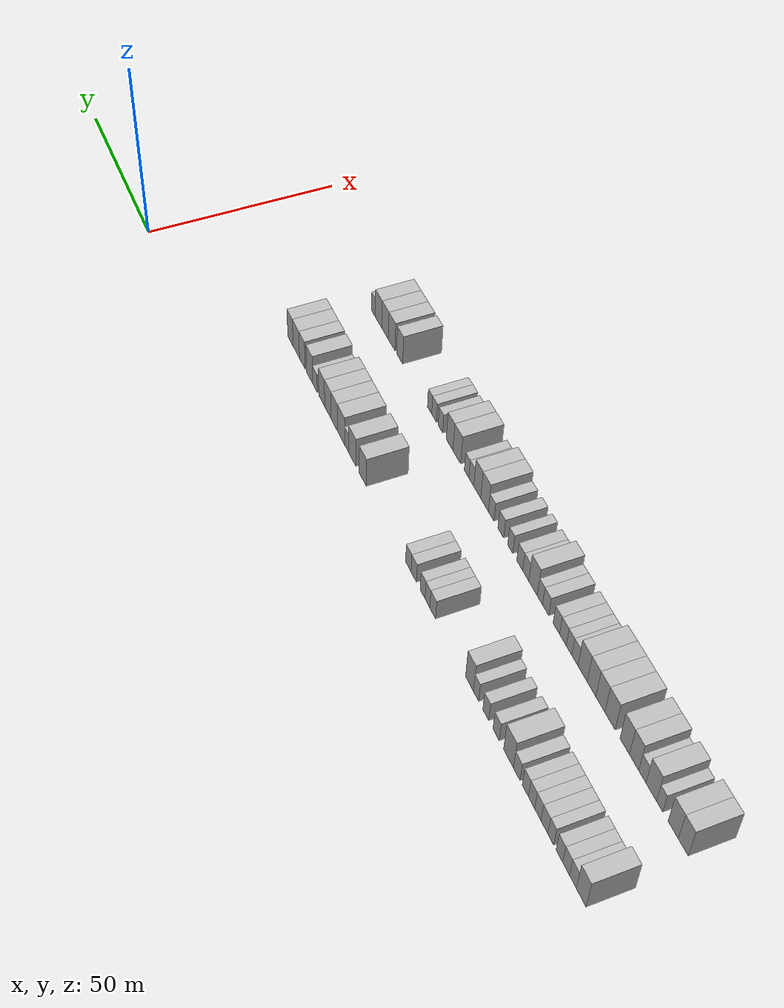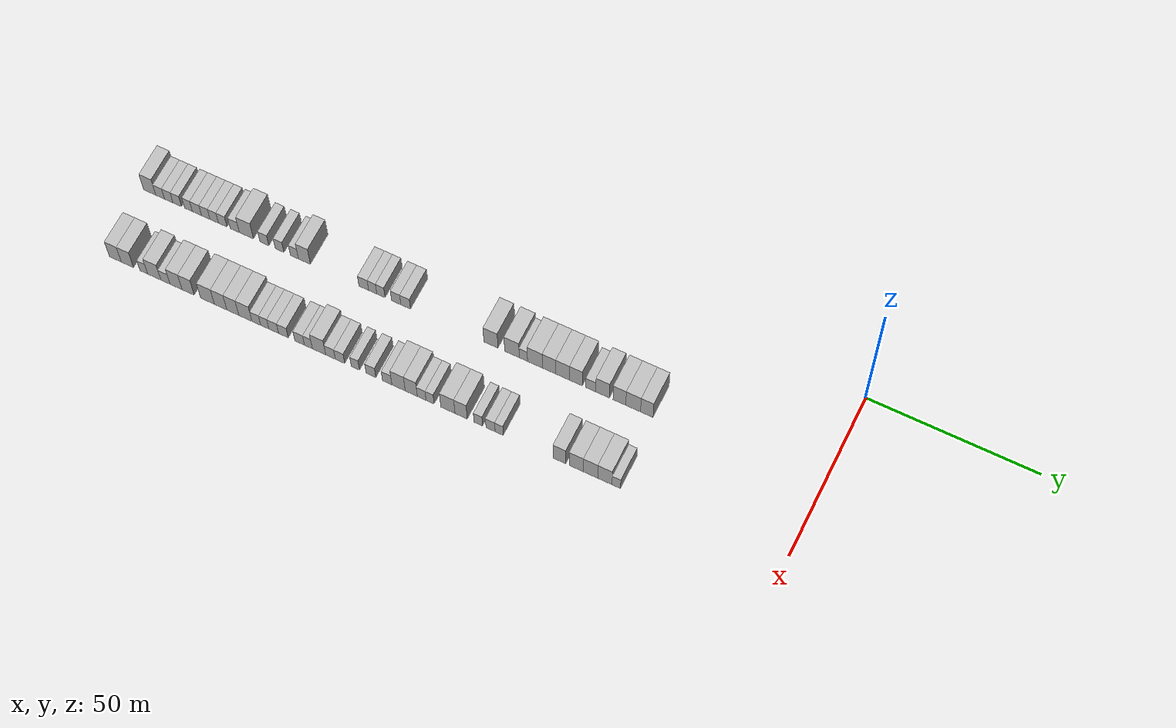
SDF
<sdf version="1.6">
 <world name="default">
  <model name="building_1">
   <static>1</static>
   <pose>25.0000 -202.0835 0 0.000000 0.000000 0.000000</pose>
   <link name="link">
    <pose>0 0 4.50 0 0 0</pose>
    <collision name="collision"><geometry><box><size>10.0000 3.8331 9.0000</size></box></geometry></collision>
    <visual name="visual">
     <cast_shadows>0</cast_shadows>
     <geometry><box><size>10.0000 3.8331 9.0000</size></box></geometry>
     <material>
      <script>
       <uri>model://HANNAS_wall/materials/scripts</uri>
       <uri>model://HANNAS_wall/materials/textures</uri>
       <name>vrc/HANNAS_wall</name>
      </script>
     </material>
    </visual>
   </link>
  </model>
  <model name="building_2">
   <static>1</static>
   <pose>25.0000 -198.8063 0 0.000000 0.000000 0.000000</pose>
   <link name="link">
    <pose>0 0 3.00 0 0 0</pose>
    <collision name="collision"><geometry><box><size>10.0000 2.7212 6.0000</size></box></geometry></collision>
    <visual name="visual">
     <cast_shadows>0</cast_shadows>
     <geometry><box><size>10.0000 2.7212 6.0000</size></box></geometry>
     <material>
      <script>
       <uri>model://HANNAS_wall/materials/scripts</uri>
       <uri>model://HANNAS_wall/materials/textures</uri>
       <name>vrc/HANNAS_wall</name>
      </script>
     </material>
    </visual>
   </link>
  </model>
  <model name="building_3">
   <static>1</static>
   <pose>25.0000 -196.0775 0 0.000000 0.000000 0.000000</pose>
   <link name="link">
    <pose>0 0 3.00 0 0 0</pose>
    <collision name="collision"><geometry><box><size>10.0000 2.7364 6.0000</size></box></geometry></collision>
    <visual name="visual">
     <cast_shadows>0</cast_shadows>
     <geometry><box><size>10.0000 2.7364 6.0000</size></box></geometry>
     <material>
      <script>
       <uri>model://HANNAS_wall/materials/scripts</uri>
       <uri>model://HANNAS_wall/materials/textures</uri>
       <name>vrc/HANNAS_wall</name>
      </script>
     </material>
    </visual>
   </link>
  </model>
  <model name="building_4">
   <static>1</static>
   <pose>25.0000 -193.3629 0 0.000000 0.000000 0.000000</pose>
   <link name="link">
    <pose>0 0 3.00 0 0 0</pose>
    <collision name="collision"><geometry><box><size>10.0000 2.6928 6.0000</size></box></geometry></collision>
    <visual name="visual">
     <cast_shadows>0</cast_shadows>
     <geometry><box><size>10.0000 2.6928 6.0000</size></box></geometry>
     <material>
      <script>
       <uri>model://HANNAS_wall/materials/scripts</uri>
       <uri>model://HANNAS_wall/materials/textures</uri>
       <name>vrc/HANNAS_wall</name>
      </script>
     </material>
    </visual>
   </link>
  </model>
  <model name="building_5">
   <static>1</static>
   <pose>25.0000 -189.8049 0 0.000000 0.000000 0.000000</pose>
   <link name="link">
    <pose>0 0 3.00 0 0 0</pose>
    <collision name="collision"><geometry><box><size>10.0000 2.4231 6.0000</size></box></geometry></collision>
    <visual name="visual">
     <cast_shadows>0</cast_shadows>
     <geometry><box><size>10.0000 2.4231 6.0000</size></box></geometry>
     <material>
      <script>
       <uri>model://HANNAS_wall/materials/scripts</uri>
       <uri>model://HANNAS_wall/materials/textures</uri>
       <name>vrc/HANNAS_wall</name>
      </script>
     </material>
    </visual>
   </link>
  </model>
  <model name="building_6">
   <static>1</static>
   <pose>25.0000 -187.1418 0 0.000000 0.000000 0.000000</pose>
   <link name="link">
    <pose>0 0 3.00 0 0 0</pose>
    <collision name="collision"><geometry><box><size>10.0000 2.9031 6.0000</size></box></geometry></collision>
    <visual name="visual">
     <cast_shadows>0</cast_shadows>
     <geometry><box><size>10.0000 2.9031 6.0000</size></box></geometry>
     <material>
      <script>
       <uri>model://HANNAS_wall/materials/scripts</uri>
       <uri>model://HANNAS_wall/materials/textures</uri>
       <name>vrc/HANNAS_wall</name>
      </script>
     </material>
    </visual>
   </link>
  </model>
  <model name="building_7">
   <static>1</static>
   <pose>25.0000 -184.3537 0 0.000000 0.000000 0.000000</pose>
   <link name="link">
    <pose>0 0 3.00 0 0 0</pose>
    <collision name="collision"><geometry><box><size>10.0000 2.6732 6.0000</size></box></geometry></collision>
    <visual name="visual">
     <cast_shadows>0</cast_shadows>
     <geometry><box><size>10.0000 2.6732 6.0000</size></box></geometry>
     <material>
      <script>
       <uri>model://HANNAS_wall/materials/scripts</uri>
       <uri>model://HANNAS_wall/materials/textures</uri>
       <name>vrc/HANNAS_wall</name>
      </script>
     </material>
    </visual>
   </link>
  </model>
  <model name="building_8">
   <static>1</static>
   <pose>25.0000 -181.7031 0 0.000000 0.000000 0.000000</pose>
   <link name="link">
    <pose>0 0 3.00 0 0 0</pose>
    <collision name="collision"><geometry><box><size>10.0000 2.6281 6.0000</size></box></geometry></collision>
    <visual name="visual">
     <cast_shadows>0</cast_shadows>
     <geometry><box><size>10.0000 2.6281 6.0000</size></box></geometry>
     <material>
      <script>
       <uri>model://HANNAS_wall/materials/scripts</uri>
       <uri>model://HANNAS_wall/materials/textures</uri>
       <name>vrc/HANNAS_wall</name>
      </script>
     </material>
    </visual>
   </link>
  </model>
  <model name="building_9">
   <static>1</static>
   <pose>25.0000 -179.0499 0 0.000000 0.000000 0.000000</pose>
   <link name="link">
    <pose>0 0 3.00 0 0 0</pose>
    <collision name="collision"><geometry><box><size>10.0000 2.6783 6.0000</size></box></geometry></collision>
    <visual name="visual">
     <cast_shadows>0</cast_shadows>
     <geometry><box><size>10.0000 2.6783 6.0000</size></box></geometry>
     <material>
      <script>
       <uri>model://HANNAS_wall/materials/scripts</uri>
       <uri>model://HANNAS_wall/materials/textures</uri>
       <name>vrc/HANNAS_wall</name>
      </script>
     </material>
    </visual>
   </link>
  </model>
  <model name="building_10">
   <static>1</static>
   <pose>25.0000 -175.2696 0 0.000000 0.000000 0.000000</pose>
   <link name="link">
    <pose>0 0 3.00 0 0 0</pose>
    <collision name="collision"><geometry><box><size>10.0000 2.8823 6.0000</size></box></geometry></collision>
    <visual name="visual">
     <cast_shadows>0</cast_shadows>
     <geometry><box><size>10.0000 2.8823 6.0000</size></box></geometry>
     <material>
      <script>
       <uri>model://HANNAS_wall/materials/scripts</uri>
       <uri>model://HANNAS_wall/materials/textures</uri>
       <name>vrc/HANNAS_wall</name>
      </script>
     </material>
    </visual>
   </link>
  </model>
  <model name="building_11">
   <static>1</static>
   <pose>25.0000 -171.6213 0 0.000000 0.000000 0.000000</pose>
   <link name="link">
    <pose>0 0 4.50 0 0 0</pose>
    <collision name="collision"><geometry><box><size>10.0000 4.4142 9.0000</size></box></geometry></collision>
    <visual name="visual">
     <cast_shadows>0</cast_shadows>
     <geometry><box><size>10.0000 4.4142 9.0000</size></box></geometry>
     <material>
      <script>
       <uri>model://HANNAS_wall/materials/scripts</uri>
       <uri>model://HANNAS_wall/materials/textures</uri>
       <name>vrc/HANNAS_wall</name>
      </script>
     </material>
    </visual>
   </link>
  </model>
  <model name="building_12">
   <static>1</static>
   <pose>25.0000 -166.0089 0 0.000000 0.000000 0.000000</pose>
   <link name="link">
    <pose>0 0 3.00 0 0 0</pose>
    <collision name="collision"><geometry><box><size>10.0000 2.8105 6.0000</size></box></geometry></collision>
    <visual name="visual">
     <cast_shadows>0</cast_shadows>
     <geometry><box><size>10.0000 2.8105 6.0000</size></box></geometry>
     <material>
      <script>
       <uri>model://HANNAS_wall/materials/scripts</uri>
       <uri>model://HANNAS_wall/materials/textures</uri>
       <name>vrc/HANNAS_wall</name>
      </script>
     </material>
    </visual>
   </link>
  </model>
  <model name="building_13">
   <static>1</static>
   <pose>25.0000 -161.2467 0 0.000000 0.000000 0.000000</pose>
   <link name="link">
    <pose>0 0 3.00 0 0 0</pose>
    <collision name="collision"><geometry><box><size>10.0000 2.7138 6.0000</size></box></geometry></collision>
    <visual name="visual">
     <cast_shadows>0</cast_shadows>
     <geometry><box><size>10.0000 2.7138 6.0000</size></box></geometry>
     <material>
      <script>
       <uri>model://HANNAS_wall/materials/scripts</uri>
       <uri>model://HANNAS_wall/materials/textures</uri>
       <name>vrc/HANNAS_wall</name>
      </script>
     </material>
    </visual>
   </link>
  </model>
  <model name="building_14">
   <static>1</static>
   <pose>25.0000 -156.6414 0 0.000000 0.000000 0.000000</pose>
   <link name="link">
    <pose>0 0 3.00 0 0 0</pose>
    <collision name="collision"><geometry><box><size>10.0000 2.4969 6.0000</size></box></geometry></collision>
    <visual name="visual">
     <cast_shadows>0</cast_shadows>
     <geometry><box><size>10.0000 2.4969 6.0000</size></box></geometry>
     <material>
      <script>
       <uri>model://HANNAS_wall/materials/scripts</uri>
       <uri>model://HANNAS_wall/materials/textures</uri>
       <name>vrc/HANNAS_wall</name>
      </script>
     </material>
    </visual>
   </link>
  </model>
  <model name="building_15">
   <static>1</static>
   <pose>25.0000 -153.5382 0 0.000000 0.000000 0.000000</pose>
   <link name="link">
    <pose>0 0 4.50 0 0 0</pose>
    <collision name="collision"><geometry><box><size>10.0000 3.7095 9.0000</size></box></geometry></collision>
    <visual name="visual">
     <cast_shadows>0</cast_shadows>
     <geometry><box><size>10.0000 3.7095 9.0000</size></box></geometry>
     <material>
      <script>
       <uri>model://HANNAS_wall/materials/scripts</uri>
       <uri>model://HANNAS_wall/materials/textures</uri>
       <name>vrc/HANNAS_wall</name>
      </script>
     </material>
    </visual>
   </link>
  </model>
  <model name="building_16">
   <static>1</static>
   <pose>25.0000 -135.2273 0 0.000000 0.000000 0.000000</pose>
   <link name="link">
    <pose>0 0 3.00 0 0 0</pose>
    <collision name="collision"><geometry><box><size>10.0000 2.9708 6.0000</size></box></geometry></collision>
    <visual name="visual">
     <cast_shadows>0</cast_shadows>
     <geometry><box><size>10.0000 2.9708 6.0000</size></box></geometry>
     <material>
      <script>
       <uri>model://HANNAS_wall/materials/scripts</uri>
       <uri>model://HANNAS_wall/materials/textures</uri>
       <name>vrc/HANNAS_wall</name>
      </script>
     </material>
    </visual>
   </link>
  </model>
  <model name="building_17">
   <static>1</static>
   <pose>25.0000 -132.5023 0 0.000000 0.000000 0.000000</pose>
   <link name="link">
    <pose>0 0 3.00 0 0 0</pose>
    <collision name="collision"><geometry><box><size>10.0000 2.4791 6.0000</size></box></geometry></collision>
    <visual name="visual">
     <cast_shadows>0</cast_shadows>
     <geometry><box><size>10.0000 2.4791 6.0000</size></box></geometry>
     <material>
      <script>
       <uri>model://HANNAS_wall/materials/scripts</uri>
       <uri>model://HANNAS_wall/materials/textures</uri>
       <name>vrc/HANNAS_wall</name>
      </script>
     </material>
    </visual>
   </link>
  </model>
  <model name="building_18">
   <static>1</static>
   <pose>25.0000 -129.9862 0 0.000000 0.000000 0.000000</pose>
   <link name="link">
    <pose>0 0 3.00 0 0 0</pose>
    <collision name="collision"><geometry><box><size>10.0000 2.5531 6.0000</size></box></geometry></collision>
    <visual name="visual">
     <cast_shadows>0</cast_shadows>
     <geometry><box><size>10.0000 2.5531 6.0000</size></box></geometry>
     <material>
      <script>
       <uri>model://HANNAS_wall/materials/scripts</uri>
       <uri>model://HANNAS_wall/materials/textures</uri>
       <name>vrc/HANNAS_wall</name>
      </script>
     </material>
    </visual>
   </link>
  </model>
  <model name="building_19">
   <static>1</static>
   <pose>25.0000 -125.3027 0 0.000000 0.000000 0.000000</pose>
   <link name="link">
    <pose>0 0 3.00 0 0 0</pose>
    <collision name="collision"><geometry><box><size>10.0000 2.8138 6.0000</size></box></geometry></collision>
    <visual name="visual">
     <cast_shadows>0</cast_shadows>
     <geometry><box><size>10.0000 2.8138 6.0000</size></box></geometry>
     <material>
      <script>
       <uri>model://HANNAS_wall/materials/scripts</uri>
       <uri>model://HANNAS_wall/materials/textures</uri>
       <name>vrc/HANNAS_wall</name>
      </script>
     </material>
    </visual>
   </link>
  </model>
  <model name="building_20">
   <static>1</static>
   <pose>25.0000 -122.4214 0 0.000000 0.000000 0.000000</pose>
   <link name="link">
    <pose>0 0 3.00 0 0 0</pose>
    <collision name="collision"><geometry><box><size>10.0000 2.9488 6.0000</size></box></geometry></collision>
    <visual name="visual">
     <cast_shadows>0</cast_shadows>
     <geometry><box><size>10.0000 2.9488 6.0000</size></box></geometry>
     <material>
      <script>
       <uri>model://HANNAS_wall/materials/scripts</uri>
       <uri>model://HANNAS_wall/materials/textures</uri>
       <name>vrc/HANNAS_wall</name>
      </script>
     </material>
    </visual>
   </link>
  </model>
  <model name="building_21">
   <static>1</static>
   <pose>25.0000 -96.5870 0 0.000000 0.000000 0.000000</pose>
   <link name="link">
    <pose>0 0 4.50 0 0 0</pose>
    <collision name="collision"><geometry><box><size>10.0000 4.2400 9.0000</size></box></geometry></collision>
    <visual name="visual">
     <cast_shadows>0</cast_shadows>
     <geometry><box><size>10.0000 4.2400 9.0000</size></box></geometry>
     <material>
      <script>
       <uri>model://HANNAS_wall/materials/scripts</uri>
       <uri>model://HANNAS_wall/materials/textures</uri>
       <name>vrc/HANNAS_wall</name>
      </script>
     </material>
    </visual>
   </link>
  </model>
  <model name="building_22">
   <static>1</static>
   <pose>25.0000 -90.2706 0 0.000000 0.000000 0.000000</pose>
   <link name="link">
    <pose>0 0 4.50 0 0 0</pose>
    <collision name="collision"><geometry><box><size>10.0000 4.3928 9.0000</size></box></geometry></collision>
    <visual name="visual">
     <cast_shadows>0</cast_shadows>
     <geometry><box><size>10.0000 4.3928 9.0000</size></box></geometry>
     <material>
      <script>
       <uri>model://HANNAS_wall/materials/scripts</uri>
       <uri>model://HANNAS_wall/materials/textures</uri>
       <name>vrc/HANNAS_wall</name>
      </script>
     </material>
    </visual>
   </link>
  </model>
  <model name="building_23">
   <static>1</static>
   <pose>25.0000 -86.8506 0 0.000000 0.000000 0.000000</pose>
   <link name="link">
    <pose>0 0 3.00 0 0 0</pose>
    <collision name="collision"><geometry><box><size>10.0000 2.4471 6.0000</size></box></geometry></collision>
    <visual name="visual">
     <cast_shadows>0</cast_shadows>
     <geometry><box><size>10.0000 2.4471 6.0000</size></box></geometry>
     <material>
      <script>
       <uri>model://HANNAS_wall/materials/scripts</uri>
       <uri>model://HANNAS_wall/materials/textures</uri>
       <name>vrc/HANNAS_wall</name>
      </script>
     </material>
    </visual>
   </link>
  </model>
  <model name="building_24">
   <static>1</static>
   <pose>25.0000 -83.3919 0 0.000000 0.000000 0.000000</pose>
   <link name="link">
    <pose>0 0 4.50 0 0 0</pose>
    <collision name="collision"><geometry><box><size>10.0000 4.4703 9.0000</size></box></geometry></collision>
    <visual name="visual">
     <cast_shadows>0</cast_shadows>
     <geometry><box><size>10.0000 4.4703 9.0000</size></box></geometry>
     <material>
      <script>
       <uri>model://HANNAS_wall/materials/scripts</uri>
       <uri>model://HANNAS_wall/materials/textures</uri>
       <name>vrc/HANNAS_wall</name>
      </script>
     </material>
    </visual>
   </link>
  </model>
  <model name="building_25">
   <static>1</static>
   <pose>25.0000 -79.1660 0 0.000000 0.000000 0.000000</pose>
   <link name="link">
    <pose>0 0 4.50 0 0 0</pose>
    <collision name="collision"><geometry><box><size>10.0000 3.9814 9.0000</size></box></geometry></collision>
    <visual name="visual">
     <cast_shadows>0</cast_shadows>
     <geometry><box><size>10.0000 3.9814 9.0000</size></box></geometry>
     <material>
      <script>
       <uri>model://HANNAS_wall/materials/scripts</uri>
       <uri>model://HANNAS_wall/materials/textures</uri>
       <name>vrc/HANNAS_wall</name>
      </script>
     </material>
    </visual>
   </link>
  </model>
  <model name="building_26">
   <static>1</static>
   <pose>25.0000 -75.1473 0 0.000000 0.000000 0.000000</pose>
   <link name="link">
    <pose>0 0 4.50 0 0 0</pose>
    <collision name="collision"><geometry><box><size>10.0000 4.0561 9.0000</size></box></geometry></collision>
    <visual name="visual">
     <cast_shadows>0</cast_shadows>
     <geometry><box><size>10.0000 4.0561 9.0000</size></box></geometry>
     <material>
      <script>
       <uri>model://HANNAS_wall/materials/scripts</uri>
       <uri>model://HANNAS_wall/materials/textures</uri>
       <name>vrc/HANNAS_wall</name>
      </script>
     </material>
    </visual>
   </link>
  </model>
  <model name="building_27">
   <static>1</static>
   <pose>25.0000 -71.1980 0 0.000000 0.000000 0.000000</pose>
   <link name="link">
    <pose>0 0 4.50 0 0 0</pose>
    <collision name="collision"><geometry><box><size>10.0000 3.8425 9.0000</size></box></geometry></collision>
    <visual name="visual">
     <cast_shadows>0</cast_shadows>
     <geometry><box><size>10.0000 3.8425 9.0000</size></box></geometry>
     <material>
      <script>
       <uri>model://HANNAS_wall/materials/scripts</uri>
       <uri>model://HANNAS_wall/materials/textures</uri>
       <name>vrc/HANNAS_wall</name>
      </script>
     </material>
    </visual>
   </link>
  </model>
  <model name="building_28">
   <static>1</static>
   <pose>25.0000 -66.7811 0 0.000000 0.000000 0.000000</pose>
   <link name="link">
    <pose>0 0 3.00 0 0 0</pose>
    <collision name="collision"><geometry><box><size>10.0000 2.9913 6.0000</size></box></geometry></collision>
    <visual name="visual">
     <cast_shadows>0</cast_shadows>
     <geometry><box><size>10.0000 2.9913 6.0000</size></box></geometry>
     <material>
      <script>
       <uri>model://HANNAS_wall/materials/scripts</uri>
       <uri>model://HANNAS_wall/materials/textures</uri>
       <name>vrc/HANNAS_wall</name>
      </script>
     </material>
    </visual>
   </link>
  </model>
  <model name="building_29">
   <static>1</static>
   <pose>25.0000 -63.2597 0 0.000000 0.000000 0.000000</pose>
   <link name="link">
    <pose>0 0 4.50 0 0 0</pose>
    <collision name="collision"><geometry><box><size>10.0000 4.0516 9.0000</size></box></geometry></collision>
    <visual name="visual">
     <cast_shadows>0</cast_shadows>
     <geometry><box><size>10.0000 4.0516 9.0000</size></box></geometry>
     <material>
      <script>
       <uri>model://HANNAS_wall/materials/scripts</uri>
       <uri>model://HANNAS_wall/materials/textures</uri>
       <name>vrc/HANNAS_wall</name>
      </script>
     </material>
    </visual>
   </link>
  </model>
  <model name="building_30">
   <static>1</static>
   <pose>25.0000 -58.3479 0 0.000000 0.000000 0.000000</pose>
   <link name="link">
    <pose>0 0 4.50 0 0 0</pose>
    <collision name="collision"><geometry><box><size>10.0000 3.7719 9.0000</size></box></geometry></collision>
    <visual name="visual">
     <cast_shadows>0</cast_shadows>
     <geometry><box><size>10.0000 3.7719 9.0000</size></box></geometry>
     <material>
      <script>
       <uri>model://HANNAS_wall/materials/scripts</uri>
       <uri>model://HANNAS_wall/materials/textures</uri>
       <name>vrc/HANNAS_wall</name>
      </script>
     </material>
    </visual>
   </link>
  </model>
  <model name="building_31">
   <static>1</static>
   <pose>25.0000 -54.2955 0 0.000000 0.000000 0.000000</pose>
   <link name="link">
    <pose>0 0 4.50 0 0 0</pose>
    <collision name="collision"><geometry><box><size>10.0000 4.3330 9.0000</size></box></geometry></collision>
    <visual name="visual">
     <cast_shadows>0</cast_shadows>
     <geometry><box><size>10.0000 4.3330 9.0000</size></box></geometry>
     <material>
      <script>
       <uri>model://HANNAS_wall/materials/scripts</uri>
       <uri>model://HANNAS_wall/materials/textures</uri>
       <name>vrc/HANNAS_wall</name>
      </script>
     </material>
    </visual>
   </link>
  </model>
  <model name="building_32">
   <static>1</static>
   <pose>25.0000 -50.2881 0 0.000000 0.000000 0.000000</pose>
   <link name="link">
    <pose>0 0 4.50 0 0 0</pose>
    <collision name="collision"><geometry><box><size>10.0000 3.6818 9.0000</size></box></geometry></collision>
    <visual name="visual">
     <cast_shadows>0</cast_shadows>
     <geometry><box><size>10.0000 3.6818 9.0000</size></box></geometry>
     <material>
      <script>
       <uri>model://HANNAS_wall/materials/scripts</uri>
       <uri>model://HANNAS_wall/materials/textures</uri>
       <name>vrc/HANNAS_wall</name>
      </script>
     </material>
    </visual>
   </link>
  </model>
  <model name="building_103">
   <static>1</static>
   <pose>47.0000 -200.1526 0 0.000000 0.000000 0.000000</pose>
   <link name="link">
    <pose>0 0 4.50 0 0 0</pose>
    <collision name="collision"><geometry><box><size>10.0000 3.6948 9.0000</size></box></geometry></collision>
    <visual name="visual">
     <cast_shadows>0</cast_shadows>
     <geometry><box><size>10.0000 3.6948 9.0000</size></box></geometry>
     <material>
      <script>
       <uri>model://HANNAS_wall/materials/scripts</uri>
       <uri>model://HANNAS_wall/materials/textures</uri>
       <name>vrc/HANNAS_wall</name>
      </script>
     </material>
    </visual>
   </link>
  </model>
  <model name="building_104">
   <static>1</static>
   <pose>47.0000 -196.3821 0 0.000000 0.000000 0.000000</pose>
   <link name="link">
    <pose>0 0 4.50 0 0 0</pose>
    <collision name="collision"><geometry><box><size>10.0000 3.8462 9.0000</size></box></geometry></collision>
    <visual name="visual">
     <cast_shadows>0</cast_shadows>
     <geometry><box><size>10.0000 3.8462 9.0000</size></box></geometry>
     <material>
      <script>
       <uri>model://HANNAS_wall/materials/scripts</uri>
       <uri>model://HANNAS_wall/materials/textures</uri>
       <name>vrc/HANNAS_wall</name>
      </script>
     </material>
    </visual>
   </link>
  </model>
  <model name="building_105">
   <static>1</static>
   <pose>47.0000 -191.2545 0 0.000000 0.000000 0.000000</pose>
   <link name="link">
    <pose>0 0 3.00 0 0 0</pose>
    <collision name="collision"><geometry><box><size>10.0000 2.4089 6.0000</size></box></geometry></collision>
    <visual name="visual">
     <cast_shadows>0</cast_shadows>
     <geometry><box><size>10.0000 2.4089 6.0000</size></box></geometry>
     <material>
      <script>
       <uri>model://HANNAS_wall/materials/scripts</uri>
       <uri>model://HANNAS_wall/materials/textures</uri>
       <name>vrc/HANNAS_wall</name>
      </script>
     </material>
    </visual>
   </link>
  </model>
  <model name="building_106">
   <static>1</static>
   <pose>47.0000 -187.9892 0 0.000000 0.000000 0.000000</pose>
   <link name="link">
    <pose>0 0 4.50 0 0 0</pose>
    <collision name="collision"><geometry><box><size>10.0000 4.1216 9.0000</size></box></geometry></collision>
    <visual name="visual">
     <cast_shadows>0</cast_shadows>
     <geometry><box><size>10.0000 4.1216 9.0000</size></box></geometry>
     <material>
      <script>
       <uri>model://HANNAS_wall/materials/scripts</uri>
       <uri>model://HANNAS_wall/materials/textures</uri>
       <name>vrc/HANNAS_wall</name>
      </script>
     </material>
    </visual>
   </link>
  </model>
  <model name="building_107">
   <static>1</static>
   <pose>47.0000 -184.5022 0 0.000000 0.000000 0.000000</pose>
   <link name="link">
    <pose>0 0 3.00 0 0 0</pose>
    <collision name="collision"><geometry><box><size>10.0000 2.8522 6.0000</size></box></geometry></collision>
    <visual name="visual">
     <cast_shadows>0</cast_shadows>
     <geometry><box><size>10.0000 2.8522 6.0000</size></box></geometry>
     <material>
      <script>
       <uri>model://HANNAS_wall/materials/scripts</uri>
       <uri>model://HANNAS_wall/materials/textures</uri>
       <name>vrc/HANNAS_wall</name>
      </script>
     </material>
    </visual>
   </link>
  </model>
  <model name="building_108">
   <static>1</static>
   <pose>47.0000 -181.2032 0 0.000000 0.000000 0.000000</pose>
   <link name="link">
    <pose>0 0 4.50 0 0 0</pose>
    <collision name="collision"><geometry><box><size>10.0000 3.7458 9.0000</size></box></geometry></collision>
    <visual name="visual">
     <cast_shadows>0</cast_shadows>
     <geometry><box><size>10.0000 3.7458 9.0000</size></box></geometry>
     <material>
      <script>
       <uri>model://HANNAS_wall/materials/scripts</uri>
       <uri>model://HANNAS_wall/materials/textures</uri>
       <name>vrc/HANNAS_wall</name>
      </script>
     </material>
    </visual>
   </link>
  </model>
  <model name="building_109">
   <static>1</static>
   <pose>47.0000 -177.4245 0 0.000000 0.000000 0.000000</pose>
   <link name="link">
    <pose>0 0 4.50 0 0 0</pose>
    <collision name="collision"><geometry><box><size>10.0000 3.8117 9.0000</size></box></geometry></collision>
    <visual name="visual">
     <cast_shadows>0</cast_shadows>
     <geometry><box><size>10.0000 3.8117 9.0000</size></box></geometry>
     <material>
      <script>
       <uri>model://HANNAS_wall/materials/scripts</uri>
       <uri>model://HANNAS_wall/materials/textures</uri>
       <name>vrc/HANNAS_wall</name>
      </script>
     </material>
    </visual>
   </link>
  </model>
  <model name="building_110">
   <static>1</static>
   <pose>47.0000 -171.3916 0 0.000000 0.000000 0.000000</pose>
   <link name="link">
    <pose>0 0 4.50 0 0 0</pose>
    <collision name="collision"><geometry><box><size>10.0000 4.2540 9.0000</size></box></geometry></collision>
    <visual name="visual">
     <cast_shadows>0</cast_shadows>
     <geometry><box><size>10.0000 4.2540 9.0000</size></box></geometry>
     <material>
      <script>
       <uri>model://HANNAS_wall/materials/scripts</uri>
       <uri>model://HANNAS_wall/materials/textures</uri>
       <name>vrc/HANNAS_wall</name>
      </script>
     </material>
    </visual>
   </link>
  </model>
  <model name="building_111">
   <static>1</static>
   <pose>47.0000 -167.3357 0 0.000000 0.000000 0.000000</pose>
   <link name="link">
    <pose>0 0 4.50 0 0 0</pose>
    <collision name="collision"><geometry><box><size>10.0000 3.8578 9.0000</size></box></geometry></collision>
    <visual name="visual">
     <cast_shadows>0</cast_shadows>
     <geometry><box><size>10.0000 3.8578 9.0000</size></box></geometry>
     <material>
      <script>
       <uri>model://HANNAS_wall/materials/scripts</uri>
       <uri>model://HANNAS_wall/materials/textures</uri>
       <name>vrc/HANNAS_wall</name>
      </script>
     </material>
    </visual>
   </link>
  </model>
  <model name="building_112">
   <static>1</static>
   <pose>47.0000 -163.5439 0 0.000000 0.000000 0.000000</pose>
   <link name="link">
    <pose>0 0 4.50 0 0 0</pose>
    <collision name="collision"><geometry><box><size>10.0000 3.7256 9.0000</size></box></geometry></collision>
    <visual name="visual">
     <cast_shadows>0</cast_shadows>
     <geometry><box><size>10.0000 3.7256 9.0000</size></box></geometry>
     <material>
      <script>
       <uri>model://HANNAS_wall/materials/scripts</uri>
       <uri>model://HANNAS_wall/materials/textures</uri>
       <name>vrc/HANNAS_wall</name>
      </script>
     </material>
    </visual>
   </link>
  </model>
  <model name="building_113">
   <static>1</static>
   <pose>47.0000 -159.6602 0 0.000000 0.000000 0.000000</pose>
   <link name="link">
    <pose>0 0 4.50 0 0 0</pose>
    <collision name="collision"><geometry><box><size>10.0000 4.0419 9.0000</size></box></geometry></collision>
    <visual name="visual">
     <cast_shadows>0</cast_shadows>
     <geometry><box><size>10.0000 4.0419 9.0000</size></box></geometry>
     <material>
      <script>
       <uri>model://HANNAS_wall/materials/scripts</uri>
       <uri>model://HANNAS_wall/materials/textures</uri>
       <name>vrc/HANNAS_wall</name>
      </script>
     </material>
    </visual>
   </link>
  </model>
  <model name="building_114">
   <static>1</static>
   <pose>47.0000 -156.3037 0 0.000000 0.000000 0.000000</pose>
   <link name="link">
    <pose>0 0 3.00 0 0 0</pose>
    <collision name="collision"><geometry><box><size>10.0000 2.6709 6.0000</size></box></geometry></collision>
    <visual name="visual">
     <cast_shadows>0</cast_shadows>
     <geometry><box><size>10.0000 2.6709 6.0000</size></box></geometry>
     <material>
      <script>
       <uri>model://HANNAS_wall/materials/scripts</uri>
       <uri>model://HANNAS_wall/materials/textures</uri>
       <name>vrc/HANNAS_wall</name>
      </script>
     </material>
    </visual>
   </link>
  </model>
  <model name="building_115">
   <static>1</static>
   <pose>47.0000 -153.7130 0 0.000000 0.000000 0.000000</pose>
   <link name="link">
    <pose>0 0 3.00 0 0 0</pose>
    <collision name="collision"><geometry><box><size>10.0000 2.5105 6.0000</size></box></geometry></collision>
    <visual name="visual">
     <cast_shadows>0</cast_shadows>
     <geometry><box><size>10.0000 2.5105 6.0000</size></box></geometry>
     <material>
      <script>
       <uri>model://HANNAS_wall/materials/scripts</uri>
       <uri>model://HANNAS_wall/materials/textures</uri>
       <name>vrc/HANNAS_wall</name>
      </script>
     </material>
    </visual>
   </link>
  </model>
  <model name="building_116">
   <static>1</static>
   <pose>47.0000 -150.9631 0 0.000000 0.000000 0.000000</pose>
   <link name="link">
    <pose>0 0 3.00 0 0 0</pose>
    <collision name="collision"><geometry><box><size>10.0000 2.9893 6.0000</size></box></geometry></collision>
    <visual name="visual">
     <cast_shadows>0</cast_shadows>
     <geometry><box><size>10.0000 2.9893 6.0000</size></box></geometry>
     <material>
      <script>
       <uri>model://HANNAS_wall/materials/scripts</uri>
       <uri>model://HANNAS_wall/materials/textures</uri>
       <name>vrc/HANNAS_wall</name>
      </script>
     </material>
    </visual>
   </link>
  </model>
  <model name="building_117">
   <static>1</static>
   <pose>47.0000 -147.9891 0 0.000000 0.000000 0.000000</pose>
   <link name="link">
    <pose>0 0 3.00 0 0 0</pose>
    <collision name="collision"><geometry><box><size>10.0000 2.9588 6.0000</size></box></geometry></collision>
    <visual name="visual">
     <cast_shadows>0</cast_shadows>
     <geometry><box><size>10.0000 2.9588 6.0000</size></box></geometry>
     <material>
      <script>
       <uri>model://HANNAS_wall/materials/scripts</uri>
       <uri>model://HANNAS_wall/materials/textures</uri>
       <name>vrc/HANNAS_wall</name>
      </script>
     </material>
    </visual>
   </link>
  </model>
  <model name="building_118">
   <static>1</static>
   <pose>47.0000 -143.0278 0 0.000000 0.000000 0.000000</pose>
   <link name="link">
    <pose>0 0 3.00 0 0 0</pose>
    <collision name="collision"><geometry><box><size>10.0000 2.9638 6.0000</size></box></geometry></collision>
    <visual name="visual">
     <cast_shadows>0</cast_shadows>
     <geometry><box><size>10.0000 2.9638 6.0000</size></box></geometry>
     <material>
      <script>
       <uri>model://HANNAS_wall/materials/scripts</uri>
       <uri>model://HANNAS_wall/materials/textures</uri>
       <name>vrc/HANNAS_wall</name>
      </script>
     </material>
    </visual>
   </link>
  </model>
  <model name="building_119">
   <static>1</static>
   <pose>47.0000 -140.3447 0 0.000000 0.000000 0.000000</pose>
   <link name="link">
    <pose>0 0 3.00 0 0 0</pose>
    <collision name="collision"><geometry><box><size>10.0000 2.4025 6.0000</size></box></geometry></collision>
    <visual name="visual">
     <cast_shadows>0</cast_shadows>
     <geometry><box><size>10.0000 2.4025 6.0000</size></box></geometry>
     <material>
      <script>
       <uri>model://HANNAS_wall/materials/scripts</uri>
       <uri>model://HANNAS_wall/materials/textures</uri>
       <name>vrc/HANNAS_wall</name>
      </script>
     </material>
    </visual>
   </link>
  </model>
  <model name="building_120">
   <static>1</static>
   <pose>47.0000 -137.1026 0 0.000000 0.000000 0.000000</pose>
   <link name="link">
    <pose>0 0 4.50 0 0 0</pose>
    <collision name="collision"><geometry><box><size>10.0000 4.0817 9.0000</size></box></geometry></collision>
    <visual name="visual">
     <cast_shadows>0</cast_shadows>
     <geometry><box><size>10.0000 4.0817 9.0000</size></box></geometry>
     <material>
      <script>
       <uri>model://HANNAS_wall/materials/scripts</uri>
       <uri>model://HANNAS_wall/materials/textures</uri>
       <name>vrc/HANNAS_wall</name>
      </script>
     </material>
    </visual>
   </link>
  </model>
  <model name="building_121">
   <static>1</static>
   <pose>47.0000 -133.6014 0 0.000000 0.000000 0.000000</pose>
   <link name="link">
    <pose>0 0 3.00 0 0 0</pose>
    <collision name="collision"><geometry><box><size>10.0000 2.9205 6.0000</size></box></geometry></collision>
    <visual name="visual">
     <cast_shadows>0</cast_shadows>
     <geometry><box><size>10.0000 2.9205 6.0000</size></box></geometry>
     <material>
      <script>
       <uri>model://HANNAS_wall/materials/scripts</uri>
       <uri>model://HANNAS_wall/materials/textures</uri>
       <name>vrc/HANNAS_wall</name>
      </script>
     </material>
    </visual>
   </link>
  </model>
  <model name="building_122">
   <static>1</static>
   <pose>47.0000 -130.7134 0 0.000000 0.000000 0.000000</pose>
   <link name="link">
    <pose>0 0 3.00 0 0 0</pose>
    <collision name="collision"><geometry><box><size>10.0000 2.8555 6.0000</size></box></geometry></collision>
    <visual name="visual">
     <cast_shadows>0</cast_shadows>
     <geometry><box><size>10.0000 2.8555 6.0000</size></box></geometry>
     <material>
      <script>
       <uri>model://HANNAS_wall/materials/scripts</uri>
       <uri>model://HANNAS_wall/materials/textures</uri>
       <name>vrc/HANNAS_wall</name>
      </script>
     </material>
    </visual>
   </link>
  </model>
  <model name="building_123">
   <static>1</static>
   <pose>47.0000 -126.0434 0 0.000000 0.000000 0.000000</pose>
   <link name="link">
    <pose>0 0 3.00 0 0 0</pose>
    <collision name="collision"><geometry><box><size>10.0000 2.4846 6.0000</size></box></geometry></collision>
    <visual name="visual">
     <cast_shadows>0</cast_shadows>
     <geometry><box><size>10.0000 2.4846 6.0000</size></box></geometry>
     <material>
      <script>
       <uri>model://HANNAS_wall/materials/scripts</uri>
       <uri>model://HANNAS_wall/materials/textures</uri>
       <name>vrc/HANNAS_wall</name>
      </script>
     </material>
    </visual>
   </link>
  </model>
  <model name="building_124">
   <static>1</static>
   <pose>47.0000 -121.3351 0 0.000000 0.000000 0.000000</pose>
   <link name="link">
    <pose>0 0 3.00 0 0 0</pose>
    <collision name="collision"><geometry><box><size>10.0000 2.9320 6.0000</size></box></geometry></collision>
    <visual name="visual">
     <cast_shadows>0</cast_shadows>
     <geometry><box><size>10.0000 2.9320 6.0000</size></box></geometry>
     <material>
      <script>
       <uri>model://HANNAS_wall/materials/scripts</uri>
       <uri>model://HANNAS_wall/materials/textures</uri>
       <name>vrc/HANNAS_wall</name>
      </script>
     </material>
    </visual>
   </link>
  </model>
  <model name="building_125">
   <static>1</static>
   <pose>47.0000 -116.4469 0 0.000000 0.000000 0.000000</pose>
   <link name="link">
    <pose>0 0 3.00 0 0 0</pose>
    <collision name="collision"><geometry><box><size>10.0000 2.8444 6.0000</size></box></geometry></collision>
    <visual name="visual">
     <cast_shadows>0</cast_shadows>
     <geometry><box><size>10.0000 2.8444 6.0000</size></box></geometry>
     <material>
      <script>
       <uri>model://HANNAS_wall/materials/scripts</uri>
       <uri>model://HANNAS_wall/materials/textures</uri>
       <name>vrc/HANNAS_wall</name>
      </script>
     </material>
    </visual>
   </link>
  </model>
  <model name="building_126">
   <static>1</static>
   <pose>47.0000 -113.0210 0 0.000000 0.000000 0.000000</pose>
   <link name="link">
    <pose>0 0 4.50 0 0 0</pose>
    <collision name="collision"><geometry><box><size>10.0000 4.0075 9.0000</size></box></geometry></collision>
    <visual name="visual">
     <cast_shadows>0</cast_shadows>
     <geometry><box><size>10.0000 4.0075 9.0000</size></box></geometry>
     <material>
      <script>
       <uri>model://HANNAS_wall/materials/scripts</uri>
       <uri>model://HANNAS_wall/materials/textures</uri>
       <name>vrc/HANNAS_wall</name>
      </script>
     </material>
    </visual>
   </link>
  </model>
  <model name="building_127">
   <static>1</static>
   <pose>47.0000 -109.2031 0 0.000000 0.000000 0.000000</pose>
   <link name="link">
    <pose>0 0 4.50 0 0 0</pose>
    <collision name="collision"><geometry><box><size>10.0000 3.6282 9.0000</size></box></geometry></collision>
    <visual name="visual">
     <cast_shadows>0</cast_shadows>
     <geometry><box><size>10.0000 3.6282 9.0000</size></box></geometry>
     <material>
      <script>
       <uri>model://HANNAS_wall/materials/scripts</uri>
       <uri>model://HANNAS_wall/materials/textures</uri>
       <name>vrc/HANNAS_wall</name>
      </script>
     </material>
    </visual>
   </link>
  </model>
  <model name="building_128">
   <static>1</static>
   <pose>47.0000 -106.0815 0 0.000000 0.000000 0.000000</pose>
   <link name="link">
    <pose>0 0 3.00 0 0 0</pose>
    <collision name="collision"><geometry><box><size>10.0000 2.6151 6.0000</size></box></geometry></collision>
    <visual name="visual">
     <cast_shadows>0</cast_shadows>
     <geometry><box><size>10.0000 2.6151 6.0000</size></box></geometry>
     <material>
      <script>
       <uri>model://HANNAS_wall/materials/scripts</uri>
       <uri>model://HANNAS_wall/materials/textures</uri>
       <name>vrc/HANNAS_wall</name>
      </script>
     </material>
    </visual>
   </link>
  </model>
  <model name="building_129">
   <static>1</static>
   <pose>47.0000 -103.5682 0 0.000000 0.000000 0.000000</pose>
   <link name="link">
    <pose>0 0 3.00 0 0 0</pose>
    <collision name="collision"><geometry><box><size>10.0000 2.4115 6.0000</size></box></geometry></collision>
    <visual name="visual">
     <cast_shadows>0</cast_shadows>
     <geometry><box><size>10.0000 2.4115 6.0000</size></box></geometry>
     <material>
      <script>
       <uri>model://HANNAS_wall/materials/scripts</uri>
       <uri>model://HANNAS_wall/materials/textures</uri>
       <name>vrc/HANNAS_wall</name>
      </script>
     </material>
    </visual>
   </link>
  </model>
  <model name="building_130">
   <static>1</static>
   <pose>47.0000 -98.2461 0 0.000000 0.000000 0.000000</pose>
   <link name="link">
    <pose>0 0 4.50 0 0 0</pose>
    <collision name="collision"><geometry><box><size>10.0000 4.2326 9.0000</size></box></geometry></collision>
    <visual name="visual">
     <cast_shadows>0</cast_shadows>
     <geometry><box><size>10.0000 4.2326 9.0000</size></box></geometry>
     <material>
      <script>
       <uri>model://HANNAS_wall/materials/scripts</uri>
       <uri>model://HANNAS_wall/materials/textures</uri>
       <name>vrc/HANNAS_wall</name>
      </script>
     </material>
    </visual>
   </link>
  </model>
  <model name="building_131">
   <static>1</static>
   <pose>47.0000 -94.3024 0 0.000000 0.000000 0.000000</pose>
   <link name="link">
    <pose>0 0 4.50 0 0 0</pose>
    <collision name="collision"><geometry><box><size>10.0000 3.6549 9.0000</size></box></geometry></collision>
    <visual name="visual">
     <cast_shadows>0</cast_shadows>
     <geometry><box><size>10.0000 3.6549 9.0000</size></box></geometry>
     <material>
      <script>
       <uri>model://HANNAS_wall/materials/scripts</uri>
       <uri>model://HANNAS_wall/materials/textures</uri>
       <name>vrc/HANNAS_wall</name>
      </script>
     </material>
    </visual>
   </link>
  </model>
  <model name="building_132">
   <static>1</static>
   <pose>47.0000 -89.2036 0 0.000000 0.000000 0.000000</pose>
   <link name="link">
    <pose>0 0 3.00 0 0 0</pose>
    <collision name="collision"><geometry><box><size>10.0000 2.5426 6.0000</size></box></geometry></collision>
    <visual name="visual">
     <cast_shadows>0</cast_shadows>
     <geometry><box><size>10.0000 2.5426 6.0000</size></box></geometry>
     <material>
      <script>
       <uri>model://HANNAS_wall/materials/scripts</uri>
       <uri>model://HANNAS_wall/materials/textures</uri>
       <name>vrc/HANNAS_wall</name>
      </script>
     </material>
    </visual>
   </link>
  </model>
  <model name="building_133">
   <static>1</static>
   <pose>47.0000 -85.5692 0 0.000000 0.000000 0.000000</pose>
   <link name="link">
    <pose>0 0 3.00 0 0 0</pose>
    <collision name="collision"><geometry><box><size>10.0000 2.7262 6.0000</size></box></geometry></collision>
    <visual name="visual">
     <cast_shadows>0</cast_shadows>
     <geometry><box><size>10.0000 2.7262 6.0000</size></box></geometry>
     <material>
      <script>
       <uri>model://HANNAS_wall/materials/scripts</uri>
       <uri>model://HANNAS_wall/materials/textures</uri>
       <name>vrc/HANNAS_wall</name>
      </script>
     </material>
    </visual>
   </link>
  </model>
  <model name="building_134">
   <static>1</static>
   <pose>47.0000 -82.9999 0 0.000000 0.000000 0.000000</pose>
   <link name="link">
    <pose>0 0 3.00 0 0 0</pose>
    <collision name="collision"><geometry><box><size>10.0000 2.4125 6.0000</size></box></geometry></collision>
    <visual name="visual">
     <cast_shadows>0</cast_shadows>
     <geometry><box><size>10.0000 2.4125 6.0000</size></box></geometry>
     <material>
      <script>
       <uri>model://HANNAS_wall/materials/scripts</uri>
       <uri>model://HANNAS_wall/materials/textures</uri>
       <name>vrc/HANNAS_wall</name>
      </script>
     </material>
    </visual>
   </link>
  </model>
  <model name="building_135">
   <static>1</static>
   <pose>47.0000 -65.2140 0 0.000000 0.000000 0.000000</pose>
   <link name="link">
    <pose>0 0 4.50 0 0 0</pose>
    <collision name="collision"><geometry><box><size>10.0000 3.7198 9.0000</size></box></geometry></collision>
    <visual name="visual">
     <cast_shadows>0</cast_shadows>
     <geometry><box><size>10.0000 3.7198 9.0000</size></box></geometry>
     <material>
      <script>
       <uri>model://HANNAS_wall/materials/scripts</uri>
       <uri>model://HANNAS_wall/materials/textures</uri>
       <name>vrc/HANNAS_wall</name>
      </script>
     </material>
    </visual>
   </link>
  </model>
  <model name="building_136">
   <static>1</static>
   <pose>47.0000 -60.3028 0 0.000000 0.000000 0.000000</pose>
   <link name="link">
    <pose>0 0 4.50 0 0 0</pose>
    <collision name="collision"><geometry><box><size>10.0000 4.1026 9.0000</size></box></geometry></collision>
    <visual name="visual">
     <cast_shadows>0</cast_shadows>
     <geometry><box><size>10.0000 4.1026 9.0000</size></box></geometry>
     <material>
      <script>
       <uri>model://HANNAS_wall/materials/scripts</uri>
       <uri>model://HANNAS_wall/materials/textures</uri>
       <name>vrc/HANNAS_wall</name>
      </script>
     </material>
    </visual>
   </link>
  </model>
  <model name="building_137">
   <static>1</static>
   <pose>47.0000 -56.1706 0 0.000000 0.000000 0.000000</pose>
   <link name="link">
    <pose>0 0 4.50 0 0 0</pose>
    <collision name="collision"><geometry><box><size>10.0000 4.1618 9.0000</size></box></geometry></collision>
    <visual name="visual">
     <cast_shadows>0</cast_shadows>
     <geometry><box><size>10.0000 4.1618 9.0000</size></box></geometry>
     <material>
      <script>
       <uri>model://HANNAS_wall/materials/scripts</uri>
       <uri>model://HANNAS_wall/materials/textures</uri>
       <name>vrc/HANNAS_wall</name>
      </script>
     </material>
    </visual>
   </link>
  </model>
  <model name="building_138">
   <static>1</static>
   <pose>47.0000 -51.9938 0 0.000000 0.000000 0.000000</pose>
   <link name="link">
    <pose>0 0 4.50 0 0 0</pose>
    <collision name="collision"><geometry><box><size>10.0000 4.1917 9.0000</size></box></geometry></collision>
    <visual name="visual">
     <cast_shadows>0</cast_shadows>
     <geometry><box><size>10.0000 4.1917 9.0000</size></box></geometry>
     <material>
      <script>
       <uri>model://HANNAS_wall/materials/scripts</uri>
       <uri>model://HANNAS_wall/materials/textures</uri>
       <name>vrc/HANNAS_wall</name>
      </script>
     </material>
    </visual>
   </link>
  </model>
  <model name="building_139">
   <static>1</static>
   <pose>47.0000 -48.6675 0 0.000000 0.000000 0.000000</pose>
   <link name="link">
    <pose>0 0 3.00 0 0 0</pose>
    <collision name="collision"><geometry><box><size>10.0000 2.4609 6.0000</size></box></geometry></collision>
    <visual name="visual">
     <cast_shadows>0</cast_shadows>
     <geometry><box><size>10.0000 2.4609 6.0000</size></box></geometry>
     <material>
      <script>
       <uri>model://HANNAS_wall/materials/scripts</uri>
       <uri>model://HANNAS_wall/materials/textures</uri>
       <name>vrc/HANNAS_wall</name>
      </script>
     </material>
    </visual>
   </link>
  </model>
 </world>
</sdf>
